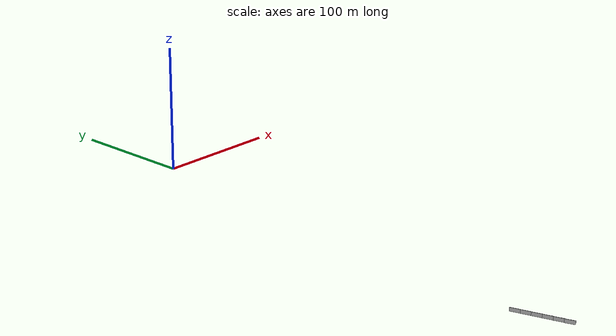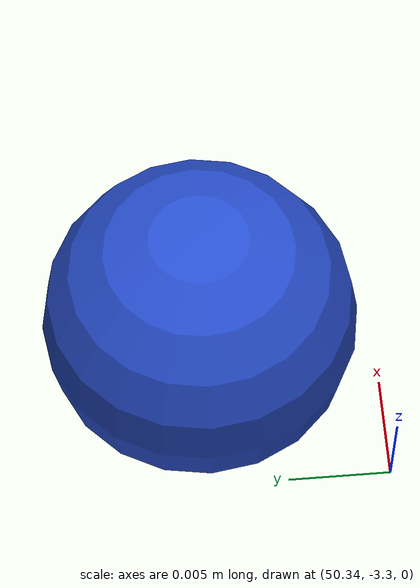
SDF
<sdf version="1.6">
 <world name="default">
  <light name="sun" type="directional">
   <pose>0 0 10 0 -0 0</pose>
   <diffuse>0.8 0.8 0.8 1</diffuse>
   <specular>0.2 0.2 0.2 1</specular>
   <attenuation>
    <range>1000</range>
    <constant>0.9</constant>
    <linear>0.01</linear>
    <quadratic>0.001</quadratic>
   </attenuation>
   <direction>-0.5 0.1 -0.9</direction>
  </light>
  <gravity>0 0 -9.8</gravity>
  <magnetic_field>6e-06 2.3e-05 -4.2e-05</magnetic_field>
  <atmosphere type="adiabatic"/>
  <physics name="default_physics" default="0" type="ode">
   <max_step_size>0.001</max_step_size>
   <real_time_factor>1</real_time_factor>
   <real_time_update_rate>1000</real_time_update_rate>
  </physics>
  <scene><ambient>0.4 0.4 0.4 1</ambient><background>0.7 0.7 0.7 1</background><shadows>1</shadows></scene>
  <audio><device>default</device></audio>
  <spherical_coordinates>
   <surface_model>EARTH_WGS84</surface_model>
   <latitude_deg>0</latitude_deg>
   <longitude_deg>0</longitude_deg>
   <elevation>0</elevation>
   <heading_deg>0</heading_deg>
  </spherical_coordinates>
  <model name="grey_wall">
   <static>1</static>
   <link name="link">
    <pose>0 0 1.4 0 -0 0</pose>
    <collision name="collision"><geometry><box><size>7.5 0.2 2.8</size></box></geometry></collision>
    <visual name="visual">
     <cast_shadows>0</cast_shadows>
     <geometry><box><size>7.5 0.2 2.8</size></box></geometry>
     <material>
      <script>
       <uri>model://grey_wall/materials/scripts</uri>
       <uri>model://grey_wall/materials/textures</uri>
       <name>vrc/grey_wall</name>
      </script>
     </material>
    </visual>
   </link>
   <pose>-29 -350 0 0 -0 1.87601</pose>
  </model>
  <model name="grey_wall_clone">
   <static>1</static>
   <link name="link">
    <pose>0 0 1.4 0 -0 0</pose>
    <collision name="collision"><geometry><box><size>7.5 0.2 2.8</size></box></geometry></collision>
    <visual name="visual">
     <cast_shadows>0</cast_shadows>
     <geometry><box><size>7.5 0.2 2.8</size></box></geometry>
     <material>
      <script>
       <uri>model://grey_wall/materials/scripts</uri>
       <uri>model://grey_wall/materials/textures</uri>
       <name>vrc/grey_wall</name>
      </script>
     </material>
    </visual>
   </link>
   <pose>-27 -357 0 0 -0 1.87601</pose>
  </model>
  <model name="grey_wall_clone_0">
   <static>1</static>
   <link name="link">
    <pose>0 0 1.4 0 -0 0</pose>
    <collision name="collision"><geometry><box><size>7.5 0.2 2.8</size></box></geometry></collision>
    <visual name="visual">
     <cast_shadows>0</cast_shadows>
     <geometry><box><size>7.5 0.2 2.8</size></box></geometry>
     <material>
      <script>
       <uri>model://grey_wall/materials/scripts</uri>
       <uri>model://grey_wall/materials/textures</uri>
       <name>vrc/grey_wall</name>
      </script>
     </material>
    </visual>
   </link>
   <pose>-25 -364 0 0 -0 1.87601</pose>
  </model>
  <model name="grey_wall_clone_0_clone">
   <static>1</static>
   <link name="link">
    <pose>0 0 1.4 0 -0 0</pose>
    <collision name="collision"><geometry><box><size>7.5 0.2 2.8</size></box></geometry></collision>
    <visual name="visual">
     <cast_shadows>0</cast_shadows>
     <geometry><box><size>7.5 0.2 2.8</size></box></geometry>
     <material>
      <script>
       <uri>model://grey_wall/materials/scripts</uri>
       <uri>model://grey_wall/materials/textures</uri>
       <name>vrc/grey_wall</name>
      </script>
     </material>
    </visual>
   </link>
   <pose>-23 -371 0 0 -0 1.87601</pose>
  </model>
  <model name="grey_wall_clone_0_clone_clone">
   <static>1</static>
   <link name="link">
    <pose>0 0 1.4 0 -0 0</pose>
    <collision name="collision"><geometry><box><size>7.5 0.2 2.8</size></box></geometry></collision>
    <visual name="visual">
     <cast_shadows>0</cast_shadows>
     <geometry><box><size>7.5 0.2 2.8</size></box></geometry>
     <material>
      <script>
       <uri>model://grey_wall/materials/scripts</uri>
       <uri>model://grey_wall/materials/textures</uri>
       <name>vrc/grey_wall</name>
      </script>
     </material>
    </visual>
   </link>
   <pose>-21 -378 0 0 -0 1.87601</pose>
  </model>
  <model name="grey_wall_clone_0_clone_clone_clone">
   <static>1</static>
   <link name="link">
    <pose>0 0 1.4 0 -0 0</pose>
    <collision name="collision"><geometry><box><size>7.5 0.2 2.8</size></box></geometry></collision>
    <visual name="visual">
     <cast_shadows>0</cast_shadows>
     <geometry><box><size>7.5 0.2 2.8</size></box></geometry>
     <material>
      <script>
       <uri>model://grey_wall/materials/scripts</uri>
       <uri>model://grey_wall/materials/textures</uri>
       <name>vrc/grey_wall</name>
      </script>
     </material>
    </visual>
   </link>
   <pose>-19 -385 0 0 -0 1.87601</pose>
  </model>
  <model name="marble_1_5cm">
   <link name="link">
    <pose>0 0 0.0075 0 -0 0</pose>
    <inertial>
     <mass>0.0062</mass>
     <inertia>
      <ixx>1.395e-07</ixx>
      <ixy>0</ixy>
      <ixz>0</ixz>
      <iyy>1.395e-07</iyy>
      <iyz>0</iyz>
      <izz>1.395e-07</izz>
     </inertia>
    </inertial>
    <collision name="collision">
     <geometry><sphere><radius>0.0075</radius></sphere></geometry>
     <surface>
      <contact>
       <poissons_ratio>0.22</poissons_ratio>
       <elastic_modulus>5.1e+10</elastic_modulus>
       <ode><kp>100000</kp><kd>100</kd><max_vel>100</max_vel><min_depth>0.001</min_depth></ode>
      </contact>
      <friction>
       <torsional>
        <coefficient>1</coefficient>
        <use_patch_radius>0</use_patch_radius>
        <surface_radius>0.01</surface_radius>
       </torsional>
      </friction>
     </surface>
    </collision>
    <visual name="visual">
     <geometry><sphere><radius>0.0075</radius></sphere></geometry>
     <material>
      <script><uri>file://media/materials/scripts/gazebo.material</uri><name>Gazebo/Blue</name></script>
     </material>
    </visual>
    <velocity_decay><linear>0</linear><angular>0.005</angular></velocity_decay>
   </link>
   <pose>50.3458 -3.29113 -0.001001 0 -0 0</pose>
  </model>
  <model name="marble_1_5cm_0">
   <link name="link">
    <pose>0 0 0.0075 0 -0 0</pose>
    <inertial>
     <mass>0.0062</mass>
     <inertia>
      <ixx>1.395e-07</ixx>
      <ixy>0</ixy>
      <ixz>0</ixz>
      <iyy>1.395e-07</iyy>
      <iyz>0</iyz>
      <izz>1.395e-07</izz>
     </inertia>
    </inertial>
    <collision name="collision">
     <geometry><sphere><radius>0.0075</radius></sphere></geometry>
     <surface>
      <contact>
       <poissons_ratio>0.22</poissons_ratio>
       <elastic_modulus>5.1e+10</elastic_modulus>
       <ode><kp>100000</kp><kd>100</kd><max_vel>100</max_vel><min_depth>0.001</min_depth></ode>
      </contact>
      <friction>
       <torsional>
        <coefficient>1</coefficient>
        <use_patch_radius>0</use_patch_radius>
        <surface_radius>0.01</surface_radius>
       </torsional>
      </friction>
     </surface>
    </collision>
    <visual name="visual">
     <geometry><sphere><radius>0.0075</radius></sphere></geometry>
     <material>
      <script><uri>file://media/materials/scripts/gazebo.material</uri><name>Gazebo/Blue</name></script>
     </material>
    </visual>
    <velocity_decay><linear>0</linear><angular>0.005</angular></velocity_decay>
   </link>
   <pose>47.73 -0.05225 -0.001001 0 -0 0</pose>
  </model>
  <model name="wood_cube_7_5cm">
   <link name="link">
    <pose>0 0 0.0375 0 -0 0</pose>
    <inertial>
     <mass>0.2249</mass>
     <inertia>
      <ixx>0.000210844</ixx>
      <ixy>0</ixy>
      <ixz>0</ixz>
      <iyy>0.000210844</iyy>
      <iyz>0</iyz>
      <izz>0.000210844</izz>
     </inertia>
    </inertial>
    <collision name="collision">
     <geometry><box><size>0.075 0.075 0.075</size></box></geometry>
     <surface>
      <contact>
       <poissons_ratio>0.347</poissons_ratio>
       <elastic_modulus>8.8e+09</elastic_modulus>
       <ode><kp>100000</kp><kd>100</kd><max_vel>100</max_vel><min_depth>0.001</min_depth></ode>
      </contact>
      <friction>
       <torsional>
        <coefficient>1</coefficient>
        <use_patch_radius>0</use_patch_radius>
        <surface_radius>0.01</surface_radius>
       </torsional>
      </friction>
     </surface>
    </collision>
    <visual name="visual">
     <geometry><box><size>0.075 0.075 0.075</size></box></geometry>
     <material>
      <script><uri>file://media/materials/scripts/gazebo.material</uri><name>Gazebo/Wood</name></script>
     </material>
    </visual>
   </link>
   <pose>49.4974 -4.72545 -0.001005 0 -0 0</pose>
  </model>
  <model name="wood_cube_10cm">
   <link name="link">
    <pose>0 0 0.05 0 -0 0</pose>
    <inertial>
     <mass>0.5167</mass>
     <inertia>
      <ixx>0.000861167</ixx>
      <ixy>0</ixy>
      <ixz>0</ixz>
      <iyy>0.000861167</iyy>
      <iyz>0</iyz>
      <izz>0.000861167</izz>
     </inertia>
    </inertial>
    <collision name="collision">
     <geometry><box><size>0.1 0.1 0.1</size></box></geometry>
     <surface>
      <contact>
       <poissons_ratio>0.347</poissons_ratio>
       <elastic_modulus>8.8e+09</elastic_modulus>
       <ode><kp>100000</kp><kd>100</kd><max_vel>100</max_vel><min_depth>0.001</min_depth></ode>
      </contact>
      <friction>
       <torsional>
        <coefficient>1</coefficient>
        <use_patch_radius>0</use_patch_radius>
        <surface_radius>0.01</surface_radius>
       </torsional>
      </friction>
     </surface>
    </collision>
    <visual name="visual">
     <geometry><box><size>0.1 0.1 0.1</size></box></geometry>
     <material>
      <script><uri>file://media/materials/scripts/gazebo.material</uri><name>Gazebo/Wood</name></script>
     </material>
    </visual>
   </link>
   <pose>63.644 -4.84845 -0.001013 -0 -0 -1e-06</pose>
  </model>
 </world>
</sdf>
